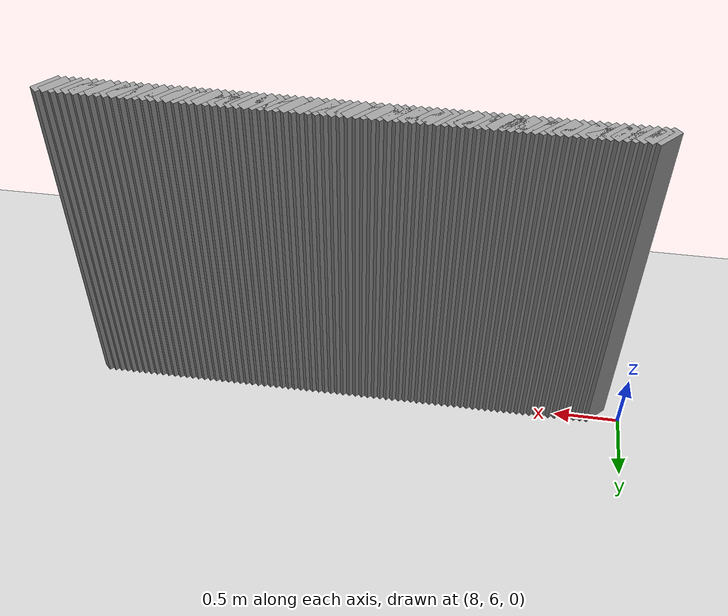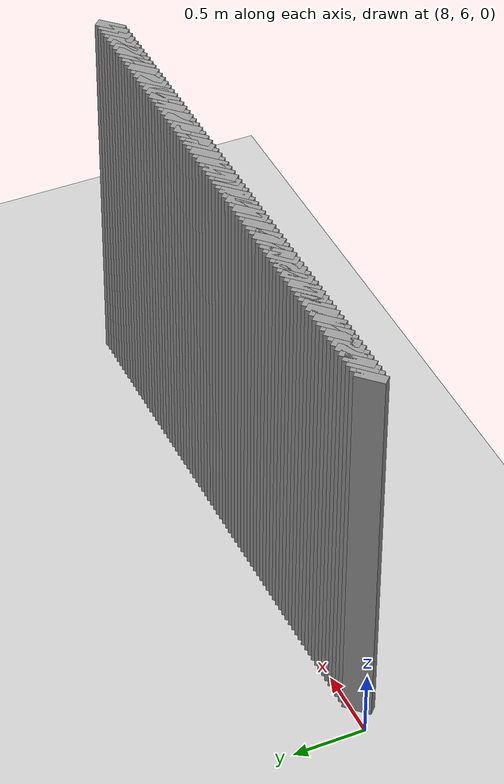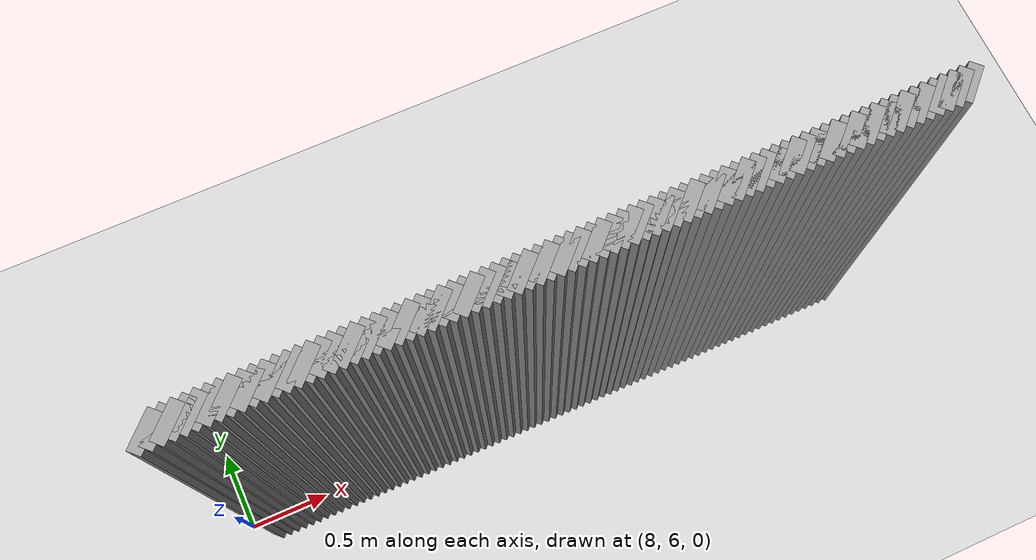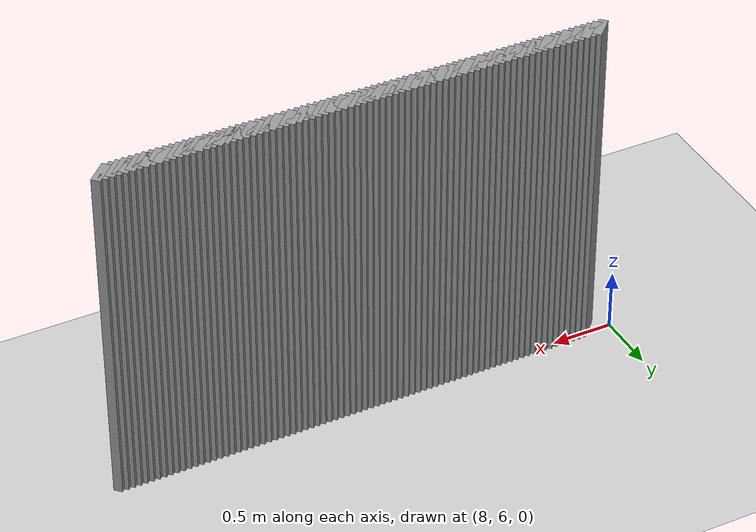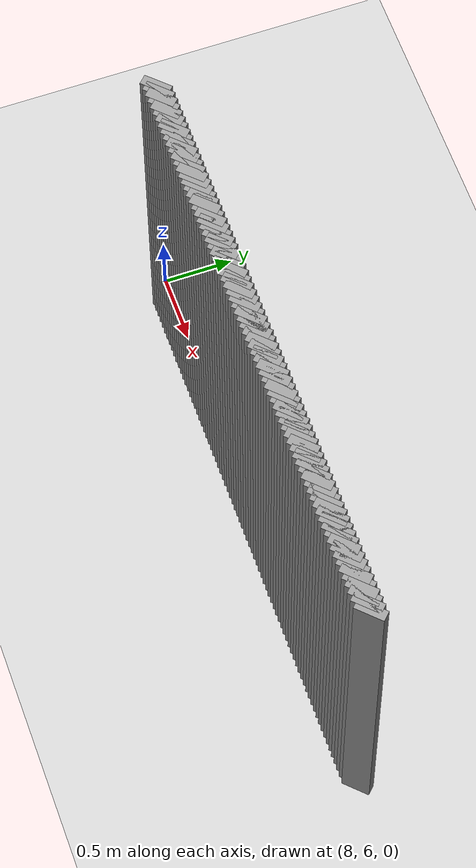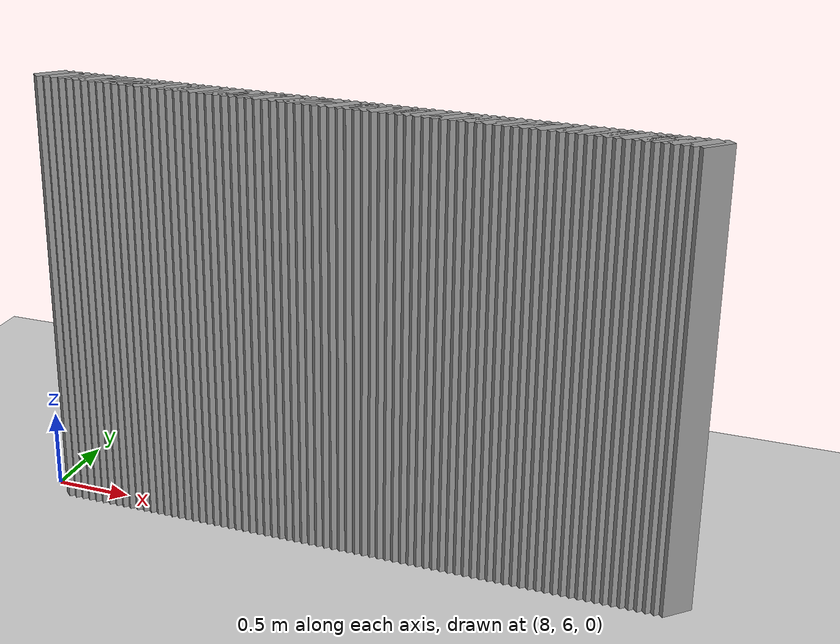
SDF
<sdf version="1.5">
 <world name="default">
  <include><uri>model://ground_plane</uri></include>
  <include><uri>model://sun</uri></include>
  <model name="grey_wall_4491">
   <static>1</static>
   <link name="link">
    <pose>8.2 5.95  1.4 0 0 -0.785398163397</pose>
    <collision name="collision"><geometry><box><size>0.0707106781187 .2  2.8</size></box></geometry></collision>
    <visual name="visual">
     <cast_shadows>0</cast_shadows>
     <geometry><box><size>0.0707106781187 .2  2.8</size></box></geometry>
     <material>
      <script>
       <uri>model://grey_wall/materials/scripts</uri>
       <uri>model://grey_wall/materials/textures</uri>
       <name>vrc/grey_wall</name>
      </script>
     </material>
    </visual>
   </link>
  </model>
  <model name="grey_wall_4492">
   <static>1</static>
   <link name="link">
    <pose>8.25 5.95  1.4 0 0 -0.785398163397</pose>
    <collision name="collision"><geometry><box><size>0.0707106781187 .2  2.8</size></box></geometry></collision>
    <visual name="visual">
     <cast_shadows>0</cast_shadows>
     <geometry><box><size>0.0707106781187 .2  2.8</size></box></geometry>
     <material>
      <script>
       <uri>model://grey_wall/materials/scripts</uri>
       <uri>model://grey_wall/materials/textures</uri>
       <name>vrc/grey_wall</name>
      </script>
     </material>
    </visual>
   </link>
  </model>
  <model name="grey_wall_4493">
   <static>1</static>
   <link name="link">
    <pose>8.3 5.95  1.4 0 0 -0.785398163397</pose>
    <collision name="collision"><geometry><box><size>0.0707106781187 .2  2.8</size></box></geometry></collision>
    <visual name="visual">
     <cast_shadows>0</cast_shadows>
     <geometry><box><size>0.0707106781187 .2  2.8</size></box></geometry>
     <material>
      <script>
       <uri>model://grey_wall/materials/scripts</uri>
       <uri>model://grey_wall/materials/textures</uri>
       <name>vrc/grey_wall</name>
      </script>
     </material>
    </visual>
   </link>
  </model>
  <model name="grey_wall_4494">
   <static>1</static>
   <link name="link">
    <pose>8.35 5.95  1.4 0 0 -0.785398163397</pose>
    <collision name="collision"><geometry><box><size>0.0707106781187 .2  2.8</size></box></geometry></collision>
    <visual name="visual">
     <cast_shadows>0</cast_shadows>
     <geometry><box><size>0.0707106781187 .2  2.8</size></box></geometry>
     <material>
      <script>
       <uri>model://grey_wall/materials/scripts</uri>
       <uri>model://grey_wall/materials/textures</uri>
       <name>vrc/grey_wall</name>
      </script>
     </material>
    </visual>
   </link>
  </model>
  <model name="grey_wall_4495">
   <static>1</static>
   <link name="link">
    <pose>8.4 5.95  1.4 0 0 -0.785398163397</pose>
    <collision name="collision"><geometry><box><size>0.0707106781187 .2  2.8</size></box></geometry></collision>
    <visual name="visual">
     <cast_shadows>0</cast_shadows>
     <geometry><box><size>0.0707106781187 .2  2.8</size></box></geometry>
     <material>
      <script>
       <uri>model://grey_wall/materials/scripts</uri>
       <uri>model://grey_wall/materials/textures</uri>
       <name>vrc/grey_wall</name>
      </script>
     </material>
    </visual>
   </link>
  </model>
  <model name="grey_wall_4496">
   <static>1</static>
   <link name="link">
    <pose>8.45 5.95  1.4 0 0 -0.785398163397</pose>
    <collision name="collision"><geometry><box><size>0.0707106781187 .2  2.8</size></box></geometry></collision>
    <visual name="visual">
     <cast_shadows>0</cast_shadows>
     <geometry><box><size>0.0707106781187 .2  2.8</size></box></geometry>
     <material>
      <script>
       <uri>model://grey_wall/materials/scripts</uri>
       <uri>model://grey_wall/materials/textures</uri>
       <name>vrc/grey_wall</name>
      </script>
     </material>
    </visual>
   </link>
  </model>
  <model name="grey_wall_4497">
   <static>1</static>
   <link name="link">
    <pose>8.5 5.95  1.4 0 0 -0.785398163397</pose>
    <collision name="collision"><geometry><box><size>0.0707106781187 .2  2.8</size></box></geometry></collision>
    <visual name="visual">
     <cast_shadows>0</cast_shadows>
     <geometry><box><size>0.0707106781187 .2  2.8</size></box></geometry>
     <material>
      <script>
       <uri>model://grey_wall/materials/scripts</uri>
       <uri>model://grey_wall/materials/textures</uri>
       <name>vrc/grey_wall</name>
      </script>
     </material>
    </visual>
   </link>
  </model>
  <model name="grey_wall_4498">
   <static>1</static>
   <link name="link">
    <pose>8.55 5.95  1.4 0 0 -0.785398163397</pose>
    <collision name="collision"><geometry><box><size>0.0707106781187 .2  2.8</size></box></geometry></collision>
    <visual name="visual">
     <cast_shadows>0</cast_shadows>
     <geometry><box><size>0.0707106781187 .2  2.8</size></box></geometry>
     <material>
      <script>
       <uri>model://grey_wall/materials/scripts</uri>
       <uri>model://grey_wall/materials/textures</uri>
       <name>vrc/grey_wall</name>
      </script>
     </material>
    </visual>
   </link>
  </model>
  <model name="grey_wall_4499">
   <static>1</static>
   <link name="link">
    <pose>8.6 5.95  1.4 0 0 -0.785398163397</pose>
    <collision name="collision"><geometry><box><size>0.0707106781187 .2  2.8</size></box></geometry></collision>
    <visual name="visual">
     <cast_shadows>0</cast_shadows>
     <geometry><box><size>0.0707106781187 .2  2.8</size></box></geometry>
     <material>
      <script>
       <uri>model://grey_wall/materials/scripts</uri>
       <uri>model://grey_wall/materials/textures</uri>
       <name>vrc/grey_wall</name>
      </script>
     </material>
    </visual>
   </link>
  </model>
  <model name="grey_wall_4500">
   <static>1</static>
   <link name="link">
    <pose>8.65 5.95  1.4 0 0 -0.785398163397</pose>
    <collision name="collision"><geometry><box><size>0.0707106781187 .2  2.8</size></box></geometry></collision>
    <visual name="visual">
     <cast_shadows>0</cast_shadows>
     <geometry><box><size>0.0707106781187 .2  2.8</size></box></geometry>
     <material>
      <script>
       <uri>model://grey_wall/materials/scripts</uri>
       <uri>model://grey_wall/materials/textures</uri>
       <name>vrc/grey_wall</name>
      </script>
     </material>
    </visual>
   </link>
  </model>
  <model name="grey_wall_4501">
   <static>1</static>
   <link name="link">
    <pose>8.7 5.95  1.4 0 0 -0.785398163397</pose>
    <collision name="collision"><geometry><box><size>0.0707106781187 .2  2.8</size></box></geometry></collision>
    <visual name="visual">
     <cast_shadows>0</cast_shadows>
     <geometry><box><size>0.0707106781187 .2  2.8</size></box></geometry>
     <material>
      <script>
       <uri>model://grey_wall/materials/scripts</uri>
       <uri>model://grey_wall/materials/textures</uri>
       <name>vrc/grey_wall</name>
      </script>
     </material>
    </visual>
   </link>
  </model>
  <model name="grey_wall_4502">
   <static>1</static>
   <link name="link">
    <pose>8.75 5.95  1.4 0 0 -0.785398163397</pose>
    <collision name="collision"><geometry><box><size>0.0707106781187 .2  2.8</size></box></geometry></collision>
    <visual name="visual">
     <cast_shadows>0</cast_shadows>
     <geometry><box><size>0.0707106781187 .2  2.8</size></box></geometry>
     <material>
      <script>
       <uri>model://grey_wall/materials/scripts</uri>
       <uri>model://grey_wall/materials/textures</uri>
       <name>vrc/grey_wall</name>
      </script>
     </material>
    </visual>
   </link>
  </model>
  <model name="grey_wall_4503">
   <static>1</static>
   <link name="link">
    <pose>8.8 5.95  1.4 0 0 -0.785398163397</pose>
    <collision name="collision"><geometry><box><size>0.0707106781187 .2  2.8</size></box></geometry></collision>
    <visual name="visual">
     <cast_shadows>0</cast_shadows>
     <geometry><box><size>0.0707106781187 .2  2.8</size></box></geometry>
     <material>
      <script>
       <uri>model://grey_wall/materials/scripts</uri>
       <uri>model://grey_wall/materials/textures</uri>
       <name>vrc/grey_wall</name>
      </script>
     </material>
    </visual>
   </link>
  </model>
  <model name="grey_wall_4504">
   <static>1</static>
   <link name="link">
    <pose>8.85 5.95  1.4 0 0 -0.785398163397</pose>
    <collision name="collision"><geometry><box><size>0.0707106781187 .2  2.8</size></box></geometry></collision>
    <visual name="visual">
     <cast_shadows>0</cast_shadows>
     <geometry><box><size>0.0707106781187 .2  2.8</size></box></geometry>
     <material>
      <script>
       <uri>model://grey_wall/materials/scripts</uri>
       <uri>model://grey_wall/materials/textures</uri>
       <name>vrc/grey_wall</name>
      </script>
     </material>
    </visual>
   </link>
  </model>
  <model name="grey_wall_4505">
   <static>1</static>
   <link name="link">
    <pose>8.9 5.95  1.4 0 0 -0.785398163397</pose>
    <collision name="collision"><geometry><box><size>0.0707106781187 .2  2.8</size></box></geometry></collision>
    <visual name="visual">
     <cast_shadows>0</cast_shadows>
     <geometry><box><size>0.0707106781187 .2  2.8</size></box></geometry>
     <material>
      <script>
       <uri>model://grey_wall/materials/scripts</uri>
       <uri>model://grey_wall/materials/textures</uri>
       <name>vrc/grey_wall</name>
      </script>
     </material>
    </visual>
   </link>
  </model>
  <model name="grey_wall_4506">
   <static>1</static>
   <link name="link">
    <pose>8.95 5.95  1.4 0 0 -0.785398163397</pose>
    <collision name="collision"><geometry><box><size>0.0707106781187 .2  2.8</size></box></geometry></collision>
    <visual name="visual">
     <cast_shadows>0</cast_shadows>
     <geometry><box><size>0.0707106781187 .2  2.8</size></box></geometry>
     <material>
      <script>
       <uri>model://grey_wall/materials/scripts</uri>
       <uri>model://grey_wall/materials/textures</uri>
       <name>vrc/grey_wall</name>
      </script>
     </material>
    </visual>
   </link>
  </model>
  <model name="grey_wall_4507">
   <static>1</static>
   <link name="link">
    <pose>9.0 5.95  1.4 0 0 -0.785398163397</pose>
    <collision name="collision"><geometry><box><size>0.0707106781187 .2  2.8</size></box></geometry></collision>
    <visual name="visual">
     <cast_shadows>0</cast_shadows>
     <geometry><box><size>0.0707106781187 .2  2.8</size></box></geometry>
     <material>
      <script>
       <uri>model://grey_wall/materials/scripts</uri>
       <uri>model://grey_wall/materials/textures</uri>
       <name>vrc/grey_wall</name>
      </script>
     </material>
    </visual>
   </link>
  </model>
  <model name="grey_wall_4508">
   <static>1</static>
   <link name="link">
    <pose>9.05 5.95  1.4 0 0 -0.785398163397</pose>
    <collision name="collision"><geometry><box><size>0.0707106781187 .2  2.8</size></box></geometry></collision>
    <visual name="visual">
     <cast_shadows>0</cast_shadows>
     <geometry><box><size>0.0707106781187 .2  2.8</size></box></geometry>
     <material>
      <script>
       <uri>model://grey_wall/materials/scripts</uri>
       <uri>model://grey_wall/materials/textures</uri>
       <name>vrc/grey_wall</name>
      </script>
     </material>
    </visual>
   </link>
  </model>
  <model name="grey_wall_4509">
   <static>1</static>
   <link name="link">
    <pose>9.1 5.95  1.4 0 0 -0.785398163397</pose>
    <collision name="collision"><geometry><box><size>0.0707106781187 .2  2.8</size></box></geometry></collision>
    <visual name="visual">
     <cast_shadows>0</cast_shadows>
     <geometry><box><size>0.0707106781187 .2  2.8</size></box></geometry>
     <material>
      <script>
       <uri>model://grey_wall/materials/scripts</uri>
       <uri>model://grey_wall/materials/textures</uri>
       <name>vrc/grey_wall</name>
      </script>
     </material>
    </visual>
   </link>
  </model>
  <model name="grey_wall_4510">
   <static>1</static>
   <link name="link">
    <pose>9.15 5.95  1.4 0 0 -0.785398163397</pose>
    <collision name="collision"><geometry><box><size>0.0707106781187 .2  2.8</size></box></geometry></collision>
    <visual name="visual">
     <cast_shadows>0</cast_shadows>
     <geometry><box><size>0.0707106781187 .2  2.8</size></box></geometry>
     <material>
      <script>
       <uri>model://grey_wall/materials/scripts</uri>
       <uri>model://grey_wall/materials/textures</uri>
       <name>vrc/grey_wall</name>
      </script>
     </material>
    </visual>
   </link>
  </model>
  <model name="grey_wall_4511">
   <static>1</static>
   <link name="link">
    <pose>9.2 5.95  1.4 0 0 -0.785398163397</pose>
    <collision name="collision"><geometry><box><size>0.0707106781187 .2  2.8</size></box></geometry></collision>
    <visual name="visual">
     <cast_shadows>0</cast_shadows>
     <geometry><box><size>0.0707106781187 .2  2.8</size></box></geometry>
     <material>
      <script>
       <uri>model://grey_wall/materials/scripts</uri>
       <uri>model://grey_wall/materials/textures</uri>
       <name>vrc/grey_wall</name>
      </script>
     </material>
    </visual>
   </link>
  </model>
  <model name="grey_wall_4512">
   <static>1</static>
   <link name="link">
    <pose>9.25 5.95  1.4 0 0 -0.785398163397</pose>
    <collision name="collision"><geometry><box><size>0.0707106781187 .2  2.8</size></box></geometry></collision>
    <visual name="visual">
     <cast_shadows>0</cast_shadows>
     <geometry><box><size>0.0707106781187 .2  2.8</size></box></geometry>
     <material>
      <script>
       <uri>model://grey_wall/materials/scripts</uri>
       <uri>model://grey_wall/materials/textures</uri>
       <name>vrc/grey_wall</name>
      </script>
     </material>
    </visual>
   </link>
  </model>
  <model name="grey_wall_4513">
   <static>1</static>
   <link name="link">
    <pose>9.3 5.95  1.4 0 0 -0.785398163397</pose>
    <collision name="collision"><geometry><box><size>0.0707106781187 .2  2.8</size></box></geometry></collision>
    <visual name="visual">
     <cast_shadows>0</cast_shadows>
     <geometry><box><size>0.0707106781187 .2  2.8</size></box></geometry>
     <material>
      <script>
       <uri>model://grey_wall/materials/scripts</uri>
       <uri>model://grey_wall/materials/textures</uri>
       <name>vrc/grey_wall</name>
      </script>
     </material>
    </visual>
   </link>
  </model>
  <model name="grey_wall_4514">
   <static>1</static>
   <link name="link">
    <pose>9.35 5.95  1.4 0 0 -0.785398163397</pose>
    <collision name="collision"><geometry><box><size>0.0707106781187 .2  2.8</size></box></geometry></collision>
    <visual name="visual">
     <cast_shadows>0</cast_shadows>
     <geometry><box><size>0.0707106781187 .2  2.8</size></box></geometry>
     <material>
      <script>
       <uri>model://grey_wall/materials/scripts</uri>
       <uri>model://grey_wall/materials/textures</uri>
       <name>vrc/grey_wall</name>
      </script>
     </material>
    </visual>
   </link>
  </model>
  <model name="grey_wall_4515">
   <static>1</static>
   <link name="link">
    <pose>9.4 5.95  1.4 0 0 -0.785398163397</pose>
    <collision name="collision"><geometry><box><size>0.0707106781187 .2  2.8</size></box></geometry></collision>
    <visual name="visual">
     <cast_shadows>0</cast_shadows>
     <geometry><box><size>0.0707106781187 .2  2.8</size></box></geometry>
     <material>
      <script>
       <uri>model://grey_wall/materials/scripts</uri>
       <uri>model://grey_wall/materials/textures</uri>
       <name>vrc/grey_wall</name>
      </script>
     </material>
    </visual>
   </link>
  </model>
  <model name="grey_wall_4516">
   <static>1</static>
   <link name="link">
    <pose>9.45 5.95  1.4 0 0 -0.785398163397</pose>
    <collision name="collision"><geometry><box><size>0.0707106781187 .2  2.8</size></box></geometry></collision>
    <visual name="visual">
     <cast_shadows>0</cast_shadows>
     <geometry><box><size>0.0707106781187 .2  2.8</size></box></geometry>
     <material>
      <script>
       <uri>model://grey_wall/materials/scripts</uri>
       <uri>model://grey_wall/materials/textures</uri>
       <name>vrc/grey_wall</name>
      </script>
     </material>
    </visual>
   </link>
  </model>
  <model name="grey_wall_4517">
   <static>1</static>
   <link name="link">
    <pose>9.5 5.95  1.4 0 0 -0.785398163397</pose>
    <collision name="collision"><geometry><box><size>0.0707106781187 .2  2.8</size></box></geometry></collision>
    <visual name="visual">
     <cast_shadows>0</cast_shadows>
     <geometry><box><size>0.0707106781187 .2  2.8</size></box></geometry>
     <material>
      <script>
       <uri>model://grey_wall/materials/scripts</uri>
       <uri>model://grey_wall/materials/textures</uri>
       <name>vrc/grey_wall</name>
      </script>
     </material>
    </visual>
   </link>
  </model>
  <model name="grey_wall_4518">
   <static>1</static>
   <link name="link">
    <pose>9.55 5.95  1.4 0 0 -0.785398163397</pose>
    <collision name="collision"><geometry><box><size>0.0707106781187 .2  2.8</size></box></geometry></collision>
    <visual name="visual">
     <cast_shadows>0</cast_shadows>
     <geometry><box><size>0.0707106781187 .2  2.8</size></box></geometry>
     <material>
      <script>
       <uri>model://grey_wall/materials/scripts</uri>
       <uri>model://grey_wall/materials/textures</uri>
       <name>vrc/grey_wall</name>
      </script>
     </material>
    </visual>
   </link>
  </model>
  <model name="grey_wall_4519">
   <static>1</static>
   <link name="link">
    <pose>9.6 5.95  1.4 0 0 -0.785398163397</pose>
    <collision name="collision"><geometry><box><size>0.0707106781187 .2  2.8</size></box></geometry></collision>
    <visual name="visual">
     <cast_shadows>0</cast_shadows>
     <geometry><box><size>0.0707106781187 .2  2.8</size></box></geometry>
     <material>
      <script>
       <uri>model://grey_wall/materials/scripts</uri>
       <uri>model://grey_wall/materials/textures</uri>
       <name>vrc/grey_wall</name>
      </script>
     </material>
    </visual>
   </link>
  </model>
  <model name="grey_wall_4520">
   <static>1</static>
   <link name="link">
    <pose>9.65 5.95  1.4 0 0 -0.785398163397</pose>
    <collision name="collision"><geometry><box><size>0.0707106781187 .2  2.8</size></box></geometry></collision>
    <visual name="visual">
     <cast_shadows>0</cast_shadows>
     <geometry><box><size>0.0707106781187 .2  2.8</size></box></geometry>
     <material>
      <script>
       <uri>model://grey_wall/materials/scripts</uri>
       <uri>model://grey_wall/materials/textures</uri>
       <name>vrc/grey_wall</name>
      </script>
     </material>
    </visual>
   </link>
  </model>
  <model name="grey_wall_4521">
   <static>1</static>
   <link name="link">
    <pose>9.7 5.95  1.4 0 0 -0.785398163397</pose>
    <collision name="collision"><geometry><box><size>0.0707106781187 .2  2.8</size></box></geometry></collision>
    <visual name="visual">
     <cast_shadows>0</cast_shadows>
     <geometry><box><size>0.0707106781187 .2  2.8</size></box></geometry>
     <material>
      <script>
       <uri>model://grey_wall/materials/scripts</uri>
       <uri>model://grey_wall/materials/textures</uri>
       <name>vrc/grey_wall</name>
      </script>
     </material>
    </visual>
   </link>
  </model>
  <model name="grey_wall_4522">
   <static>1</static>
   <link name="link">
    <pose>9.75 5.95  1.4 0 0 -0.785398163397</pose>
    <collision name="collision"><geometry><box><size>0.0707106781187 .2  2.8</size></box></geometry></collision>
    <visual name="visual">
     <cast_shadows>0</cast_shadows>
     <geometry><box><size>0.0707106781187 .2  2.8</size></box></geometry>
     <material>
      <script>
       <uri>model://grey_wall/materials/scripts</uri>
       <uri>model://grey_wall/materials/textures</uri>
       <name>vrc/grey_wall</name>
      </script>
     </material>
    </visual>
   </link>
  </model>
  <model name="grey_wall_4523">
   <static>1</static>
   <link name="link">
    <pose>9.8 5.95  1.4 0 0 -0.785398163397</pose>
    <collision name="collision"><geometry><box><size>0.0707106781187 .2  2.8</size></box></geometry></collision>
    <visual name="visual">
     <cast_shadows>0</cast_shadows>
     <geometry><box><size>0.0707106781187 .2  2.8</size></box></geometry>
     <material>
      <script>
       <uri>model://grey_wall/materials/scripts</uri>
       <uri>model://grey_wall/materials/textures</uri>
       <name>vrc/grey_wall</name>
      </script>
     </material>
    </visual>
   </link>
  </model>
  <model name="grey_wall_4524">
   <static>1</static>
   <link name="link">
    <pose>9.85 5.95  1.4 0 0 -0.785398163397</pose>
    <collision name="collision"><geometry><box><size>0.0707106781187 .2  2.8</size></box></geometry></collision>
    <visual name="visual">
     <cast_shadows>0</cast_shadows>
     <geometry><box><size>0.0707106781187 .2  2.8</size></box></geometry>
     <material>
      <script>
       <uri>model://grey_wall/materials/scripts</uri>
       <uri>model://grey_wall/materials/textures</uri>
       <name>vrc/grey_wall</name>
      </script>
     </material>
    </visual>
   </link>
  </model>
  <model name="grey_wall_4525">
   <static>1</static>
   <link name="link">
    <pose>9.9 5.95  1.4 0 0 -0.785398163397</pose>
    <collision name="collision"><geometry><box><size>0.0707106781187 .2  2.8</size></box></geometry></collision>
    <visual name="visual">
     <cast_shadows>0</cast_shadows>
     <geometry><box><size>0.0707106781187 .2  2.8</size></box></geometry>
     <material>
      <script>
       <uri>model://grey_wall/materials/scripts</uri>
       <uri>model://grey_wall/materials/textures</uri>
       <name>vrc/grey_wall</name>
      </script>
     </material>
    </visual>
   </link>
  </model>
  <model name="grey_wall_4526">
   <static>1</static>
   <link name="link">
    <pose>9.95 5.95  1.4 0 0 -0.785398163397</pose>
    <collision name="collision"><geometry><box><size>0.0707106781187 .2  2.8</size></box></geometry></collision>
    <visual name="visual">
     <cast_shadows>0</cast_shadows>
     <geometry><box><size>0.0707106781187 .2  2.8</size></box></geometry>
     <material>
      <script>
       <uri>model://grey_wall/materials/scripts</uri>
       <uri>model://grey_wall/materials/textures</uri>
       <name>vrc/grey_wall</name>
      </script>
     </material>
    </visual>
   </link>
  </model>
  <model name="grey_wall_4527">
   <static>1</static>
   <link name="link">
    <pose>10.0 5.95  1.4 0 0 -0.785398163397</pose>
    <collision name="collision"><geometry><box><size>0.0707106781187 .2  2.8</size></box></geometry></collision>
    <visual name="visual">
     <cast_shadows>0</cast_shadows>
     <geometry><box><size>0.0707106781187 .2  2.8</size></box></geometry>
     <material>
      <script>
       <uri>model://grey_wall/materials/scripts</uri>
       <uri>model://grey_wall/materials/textures</uri>
       <name>vrc/grey_wall</name>
      </script>
     </material>
    </visual>
   </link>
  </model>
  <model name="grey_wall_4528">
   <static>1</static>
   <link name="link">
    <pose>10.05 5.95  1.4 0 0 -0.785398163397</pose>
    <collision name="collision"><geometry><box><size>0.0707106781187 .2  2.8</size></box></geometry></collision>
    <visual name="visual">
     <cast_shadows>0</cast_shadows>
     <geometry><box><size>0.0707106781187 .2  2.8</size></box></geometry>
     <material>
      <script>
       <uri>model://grey_wall/materials/scripts</uri>
       <uri>model://grey_wall/materials/textures</uri>
       <name>vrc/grey_wall</name>
      </script>
     </material>
    </visual>
   </link>
  </model>
  <model name="grey_wall_4529">
   <static>1</static>
   <link name="link">
    <pose>10.1 5.95  1.4 0 0 -0.785398163397</pose>
    <collision name="collision"><geometry><box><size>0.0707106781187 .2  2.8</size></box></geometry></collision>
    <visual name="visual">
     <cast_shadows>0</cast_shadows>
     <geometry><box><size>0.0707106781187 .2  2.8</size></box></geometry>
     <material>
      <script>
       <uri>model://grey_wall/materials/scripts</uri>
       <uri>model://grey_wall/materials/textures</uri>
       <name>vrc/grey_wall</name>
      </script>
     </material>
    </visual>
   </link>
  </model>
  <model name="grey_wall_4530">
   <static>1</static>
   <link name="link">
    <pose>10.15 5.95  1.4 0 0 -0.785398163397</pose>
    <collision name="collision"><geometry><box><size>0.0707106781187 .2  2.8</size></box></geometry></collision>
    <visual name="visual">
     <cast_shadows>0</cast_shadows>
     <geometry><box><size>0.0707106781187 .2  2.8</size></box></geometry>
     <material>
      <script>
       <uri>model://grey_wall/materials/scripts</uri>
       <uri>model://grey_wall/materials/textures</uri>
       <name>vrc/grey_wall</name>
      </script>
     </material>
    </visual>
   </link>
  </model>
  <model name="grey_wall_4531">
   <static>1</static>
   <link name="link">
    <pose>10.2 5.95  1.4 0 0 -0.785398163397</pose>
    <collision name="collision"><geometry><box><size>0.0707106781187 .2  2.8</size></box></geometry></collision>
    <visual name="visual">
     <cast_shadows>0</cast_shadows>
     <geometry><box><size>0.0707106781187 .2  2.8</size></box></geometry>
     <material>
      <script>
       <uri>model://grey_wall/materials/scripts</uri>
       <uri>model://grey_wall/materials/textures</uri>
       <name>vrc/grey_wall</name>
      </script>
     </material>
    </visual>
   </link>
  </model>
  <model name="grey_wall_4532">
   <static>1</static>
   <link name="link">
    <pose>10.25 5.95  1.4 0 0 -0.785398163397</pose>
    <collision name="collision"><geometry><box><size>0.0707106781187 .2  2.8</size></box></geometry></collision>
    <visual name="visual">
     <cast_shadows>0</cast_shadows>
     <geometry><box><size>0.0707106781187 .2  2.8</size></box></geometry>
     <material>
      <script>
       <uri>model://grey_wall/materials/scripts</uri>
       <uri>model://grey_wall/materials/textures</uri>
       <name>vrc/grey_wall</name>
      </script>
     </material>
    </visual>
   </link>
  </model>
  <model name="grey_wall_4533">
   <static>1</static>
   <link name="link">
    <pose>10.3 5.95  1.4 0 0 -0.785398163397</pose>
    <collision name="collision"><geometry><box><size>0.0707106781187 .2  2.8</size></box></geometry></collision>
    <visual name="visual">
     <cast_shadows>0</cast_shadows>
     <geometry><box><size>0.0707106781187 .2  2.8</size></box></geometry>
     <material>
      <script>
       <uri>model://grey_wall/materials/scripts</uri>
       <uri>model://grey_wall/materials/textures</uri>
       <name>vrc/grey_wall</name>
      </script>
     </material>
    </visual>
   </link>
  </model>
  <model name="grey_wall_4534">
   <static>1</static>
   <link name="link">
    <pose>10.35 5.95  1.4 0 0 -0.785398163397</pose>
    <collision name="collision"><geometry><box><size>0.0707106781187 .2  2.8</size></box></geometry></collision>
    <visual name="visual">
     <cast_shadows>0</cast_shadows>
     <geometry><box><size>0.0707106781187 .2  2.8</size></box></geometry>
     <material>
      <script>
       <uri>model://grey_wall/materials/scripts</uri>
       <uri>model://grey_wall/materials/textures</uri>
       <name>vrc/grey_wall</name>
      </script>
     </material>
    </visual>
   </link>
  </model>
  <model name="grey_wall_4535">
   <static>1</static>
   <link name="link">
    <pose>10.4 5.95  1.4 0 0 -0.785398163397</pose>
    <collision name="collision"><geometry><box><size>0.0707106781187 .2  2.8</size></box></geometry></collision>
    <visual name="visual">
     <cast_shadows>0</cast_shadows>
     <geometry><box><size>0.0707106781187 .2  2.8</size></box></geometry>
     <material>
      <script>
       <uri>model://grey_wall/materials/scripts</uri>
       <uri>model://grey_wall/materials/textures</uri>
       <name>vrc/grey_wall</name>
      </script>
     </material>
    </visual>
   </link>
  </model>
  <model name="grey_wall_4536">
   <static>1</static>
   <link name="link">
    <pose>10.45 5.95  1.4 0 0 -0.785398163397</pose>
    <collision name="collision"><geometry><box><size>0.0707106781187 .2  2.8</size></box></geometry></collision>
    <visual name="visual">
     <cast_shadows>0</cast_shadows>
     <geometry><box><size>0.0707106781187 .2  2.8</size></box></geometry>
     <material>
      <script>
       <uri>model://grey_wall/materials/scripts</uri>
       <uri>model://grey_wall/materials/textures</uri>
       <name>vrc/grey_wall</name>
      </script>
     </material>
    </visual>
   </link>
  </model>
  <model name="grey_wall_4537">
   <static>1</static>
   <link name="link">
    <pose>10.5 5.95  1.4 0 0 -0.785398163397</pose>
    <collision name="collision"><geometry><box><size>0.0707106781187 .2  2.8</size></box></geometry></collision>
    <visual name="visual">
     <cast_shadows>0</cast_shadows>
     <geometry><box><size>0.0707106781187 .2  2.8</size></box></geometry>
     <material>
      <script>
       <uri>model://grey_wall/materials/scripts</uri>
       <uri>model://grey_wall/materials/textures</uri>
       <name>vrc/grey_wall</name>
      </script>
     </material>
    </visual>
   </link>
  </model>
  <model name="grey_wall_4538">
   <static>1</static>
   <link name="link">
    <pose>10.55 5.95  1.4 0 0 -0.785398163397</pose>
    <collision name="collision"><geometry><box><size>0.0707106781187 .2  2.8</size></box></geometry></collision>
    <visual name="visual">
     <cast_shadows>0</cast_shadows>
     <geometry><box><size>0.0707106781187 .2  2.8</size></box></geometry>
     <material>
      <script>
       <uri>model://grey_wall/materials/scripts</uri>
       <uri>model://grey_wall/materials/textures</uri>
       <name>vrc/grey_wall</name>
      </script>
     </material>
    </visual>
   </link>
  </model>
  <model name="grey_wall_4539">
   <static>1</static>
   <link name="link">
    <pose>10.6 5.95  1.4 0 0 -0.785398163397</pose>
    <collision name="collision"><geometry><box><size>0.0707106781187 .2  2.8</size></box></geometry></collision>
    <visual name="visual">
     <cast_shadows>0</cast_shadows>
     <geometry><box><size>0.0707106781187 .2  2.8</size></box></geometry>
     <material>
      <script>
       <uri>model://grey_wall/materials/scripts</uri>
       <uri>model://grey_wall/materials/textures</uri>
       <name>vrc/grey_wall</name>
      </script>
     </material>
    </visual>
   </link>
  </model>
  <model name="grey_wall_4540">
   <static>1</static>
   <link name="link">
    <pose>10.65 5.95  1.4 0 0 -0.785398163397</pose>
    <collision name="collision"><geometry><box><size>0.0707106781187 .2  2.8</size></box></geometry></collision>
    <visual name="visual">
     <cast_shadows>0</cast_shadows>
     <geometry><box><size>0.0707106781187 .2  2.8</size></box></geometry>
     <material>
      <script>
       <uri>model://grey_wall/materials/scripts</uri>
       <uri>model://grey_wall/materials/textures</uri>
       <name>vrc/grey_wall</name>
      </script>
     </material>
    </visual>
   </link>
  </model>
  <model name="grey_wall_4541">
   <static>1</static>
   <link name="link">
    <pose>10.7 5.95  1.4 0 0 -0.785398163397</pose>
    <collision name="collision"><geometry><box><size>0.0707106781187 .2  2.8</size></box></geometry></collision>
    <visual name="visual">
     <cast_shadows>0</cast_shadows>
     <geometry><box><size>0.0707106781187 .2  2.8</size></box></geometry>
     <material>
      <script>
       <uri>model://grey_wall/materials/scripts</uri>
       <uri>model://grey_wall/materials/textures</uri>
       <name>vrc/grey_wall</name>
      </script>
     </material>
    </visual>
   </link>
  </model>
  <model name="grey_wall_4542">
   <static>1</static>
   <link name="link">
    <pose>10.75 5.95  1.4 0 0 -0.785398163397</pose>
    <collision name="collision"><geometry><box><size>0.0707106781187 .2  2.8</size></box></geometry></collision>
    <visual name="visual">
     <cast_shadows>0</cast_shadows>
     <geometry><box><size>0.0707106781187 .2  2.8</size></box></geometry>
     <material>
      <script>
       <uri>model://grey_wall/materials/scripts</uri>
       <uri>model://grey_wall/materials/textures</uri>
       <name>vrc/grey_wall</name>
      </script>
     </material>
    </visual>
   </link>
  </model>
  <model name="grey_wall_4543">
   <static>1</static>
   <link name="link">
    <pose>10.8 5.95  1.4 0 0 -0.785398163397</pose>
    <collision name="collision"><geometry><box><size>0.0707106781187 .2  2.8</size></box></geometry></collision>
    <visual name="visual">
     <cast_shadows>0</cast_shadows>
     <geometry><box><size>0.0707106781187 .2  2.8</size></box></geometry>
     <material>
      <script>
       <uri>model://grey_wall/materials/scripts</uri>
       <uri>model://grey_wall/materials/textures</uri>
       <name>vrc/grey_wall</name>
      </script>
     </material>
    </visual>
   </link>
  </model>
  <model name="grey_wall_4544">
   <static>1</static>
   <link name="link">
    <pose>10.85 5.95  1.4 0 0 -0.785398163397</pose>
    <collision name="collision"><geometry><box><size>0.0707106781187 .2  2.8</size></box></geometry></collision>
    <visual name="visual">
     <cast_shadows>0</cast_shadows>
     <geometry><box><size>0.0707106781187 .2  2.8</size></box></geometry>
     <material>
      <script>
       <uri>model://grey_wall/materials/scripts</uri>
       <uri>model://grey_wall/materials/textures</uri>
       <name>vrc/grey_wall</name>
      </script>
     </material>
    </visual>
   </link>
  </model>
  <model name="grey_wall_4545">
   <static>1</static>
   <link name="link">
    <pose>10.9 5.95  1.4 0 0 -0.785398163397</pose>
    <collision name="collision"><geometry><box><size>0.0707106781187 .2  2.8</size></box></geometry></collision>
    <visual name="visual">
     <cast_shadows>0</cast_shadows>
     <geometry><box><size>0.0707106781187 .2  2.8</size></box></geometry>
     <material>
      <script>
       <uri>model://grey_wall/materials/scripts</uri>
       <uri>model://grey_wall/materials/textures</uri>
       <name>vrc/grey_wall</name>
      </script>
     </material>
    </visual>
   </link>
  </model>
  <model name="grey_wall_4546">
   <static>1</static>
   <link name="link">
    <pose>10.95 5.95  1.4 0 0 -0.785398163397</pose>
    <collision name="collision"><geometry><box><size>0.0707106781187 .2  2.8</size></box></geometry></collision>
    <visual name="visual">
     <cast_shadows>0</cast_shadows>
     <geometry><box><size>0.0707106781187 .2  2.8</size></box></geometry>
     <material>
      <script>
       <uri>model://grey_wall/materials/scripts</uri>
       <uri>model://grey_wall/materials/textures</uri>
       <name>vrc/grey_wall</name>
      </script>
     </material>
    </visual>
   </link>
  </model>
  <model name="grey_wall_4547">
   <static>1</static>
   <link name="link">
    <pose>11.0 5.95  1.4 0 0 -0.785398163397</pose>
    <collision name="collision"><geometry><box><size>0.0707106781187 .2  2.8</size></box></geometry></collision>
    <visual name="visual">
     <cast_shadows>0</cast_shadows>
     <geometry><box><size>0.0707106781187 .2  2.8</size></box></geometry>
     <material>
      <script>
       <uri>model://grey_wall/materials/scripts</uri>
       <uri>model://grey_wall/materials/textures</uri>
       <name>vrc/grey_wall</name>
      </script>
     </material>
    </visual>
   </link>
  </model>
  <model name="grey_wall_4548">
   <static>1</static>
   <link name="link">
    <pose>11.05 5.95  1.4 0 0 -0.785398163397</pose>
    <collision name="collision"><geometry><box><size>0.0707106781187 .2  2.8</size></box></geometry></collision>
    <visual name="visual">
     <cast_shadows>0</cast_shadows>
     <geometry><box><size>0.0707106781187 .2  2.8</size></box></geometry>
     <material>
      <script>
       <uri>model://grey_wall/materials/scripts</uri>
       <uri>model://grey_wall/materials/textures</uri>
       <name>vrc/grey_wall</name>
      </script>
     </material>
    </visual>
   </link>
  </model>
  <model name="grey_wall_4549">
   <static>1</static>
   <link name="link">
    <pose>11.1 5.95  1.4 0 0 -0.785398163397</pose>
    <collision name="collision"><geometry><box><size>0.0707106781187 .2  2.8</size></box></geometry></collision>
    <visual name="visual">
     <cast_shadows>0</cast_shadows>
     <geometry><box><size>0.0707106781187 .2  2.8</size></box></geometry>
     <material>
      <script>
       <uri>model://grey_wall/materials/scripts</uri>
       <uri>model://grey_wall/materials/textures</uri>
       <name>vrc/grey_wall</name>
      </script>
     </material>
    </visual>
   </link>
  </model>
  <model name="grey_wall_4550">
   <static>1</static>
   <link name="link">
    <pose>11.15 5.95  1.4 0 0 -0.785398163397</pose>
    <collision name="collision"><geometry><box><size>0.0707106781187 .2  2.8</size></box></geometry></collision>
    <visual name="visual">
     <cast_shadows>0</cast_shadows>
     <geometry><box><size>0.0707106781187 .2  2.8</size></box></geometry>
     <material>
      <script>
       <uri>model://grey_wall/materials/scripts</uri>
       <uri>model://grey_wall/materials/textures</uri>
       <name>vrc/grey_wall</name>
      </script>
     </material>
    </visual>
   </link>
  </model>
  <model name="grey_wall_4551">
   <static>1</static>
   <link name="link">
    <pose>11.2 5.95  1.4 0 0 -0.785398163397</pose>
    <collision name="collision"><geometry><box><size>0.0707106781187 .2  2.8</size></box></geometry></collision>
    <visual name="visual">
     <cast_shadows>0</cast_shadows>
     <geometry><box><size>0.0707106781187 .2  2.8</size></box></geometry>
     <material>
      <script>
       <uri>model://grey_wall/materials/scripts</uri>
       <uri>model://grey_wall/materials/textures</uri>
       <name>vrc/grey_wall</name>
      </script>
     </material>
    </visual>
   </link>
  </model>
  <model name="grey_wall_4552">
   <static>1</static>
   <link name="link">
    <pose>11.25 5.95  1.4 0 0 -0.785398163397</pose>
    <collision name="collision"><geometry><box><size>0.0707106781187 .2  2.8</size></box></geometry></collision>
    <visual name="visual">
     <cast_shadows>0</cast_shadows>
     <geometry><box><size>0.0707106781187 .2  2.8</size></box></geometry>
     <material>
      <script>
       <uri>model://grey_wall/materials/scripts</uri>
       <uri>model://grey_wall/materials/textures</uri>
       <name>vrc/grey_wall</name>
      </script>
     </material>
    </visual>
   </link>
  </model>
  <model name="grey_wall_4553">
   <static>1</static>
   <link name="link">
    <pose>11.3 5.95  1.4 0 0 -0.785398163397</pose>
    <collision name="collision"><geometry><box><size>0.0707106781187 .2  2.8</size></box></geometry></collision>
    <visual name="visual">
     <cast_shadows>0</cast_shadows>
     <geometry><box><size>0.0707106781187 .2  2.8</size></box></geometry>
     <material>
      <script>
       <uri>model://grey_wall/materials/scripts</uri>
       <uri>model://grey_wall/materials/textures</uri>
       <name>vrc/grey_wall</name>
      </script>
     </material>
    </visual>
   </link>
  </model>
  <model name="grey_wall_4554">
   <static>1</static>
   <link name="link">
    <pose>11.35 5.95  1.4 0 0 -0.785398163397</pose>
    <collision name="collision"><geometry><box><size>0.0707106781187 .2  2.8</size></box></geometry></collision>
    <visual name="visual">
     <cast_shadows>0</cast_shadows>
     <geometry><box><size>0.0707106781187 .2  2.8</size></box></geometry>
     <material>
      <script>
       <uri>model://grey_wall/materials/scripts</uri>
       <uri>model://grey_wall/materials/textures</uri>
       <name>vrc/grey_wall</name>
      </script>
     </material>
    </visual>
   </link>
  </model>
  <model name="grey_wall_4555">
   <static>1</static>
   <link name="link">
    <pose>11.4 5.95  1.4 0 0 -0.785398163397</pose>
    <collision name="collision"><geometry><box><size>0.0707106781187 .2  2.8</size></box></geometry></collision>
    <visual name="visual">
     <cast_shadows>0</cast_shadows>
     <geometry><box><size>0.0707106781187 .2  2.8</size></box></geometry>
     <material>
      <script>
       <uri>model://grey_wall/materials/scripts</uri>
       <uri>model://grey_wall/materials/textures</uri>
       <name>vrc/grey_wall</name>
      </script>
     </material>
    </visual>
   </link>
  </model>
  <model name="grey_wall_4556">
   <static>1</static>
   <link name="link">
    <pose>11.45 5.95  1.4 0 0 -0.785398163397</pose>
    <collision name="collision"><geometry><box><size>0.0707106781187 .2  2.8</size></box></geometry></collision>
    <visual name="visual">
     <cast_shadows>0</cast_shadows>
     <geometry><box><size>0.0707106781187 .2  2.8</size></box></geometry>
     <material>
      <script>
       <uri>model://grey_wall/materials/scripts</uri>
       <uri>model://grey_wall/materials/textures</uri>
       <name>vrc/grey_wall</name>
      </script>
     </material>
    </visual>
   </link>
  </model>
  <model name="grey_wall_4557">
   <static>1</static>
   <link name="link">
    <pose>11.5 5.95  1.4 0 0 -0.785398163397</pose>
    <collision name="collision"><geometry><box><size>0.0707106781187 .2  2.8</size></box></geometry></collision>
    <visual name="visual">
     <cast_shadows>0</cast_shadows>
     <geometry><box><size>0.0707106781187 .2  2.8</size></box></geometry>
     <material>
      <script>
       <uri>model://grey_wall/materials/scripts</uri>
       <uri>model://grey_wall/materials/textures</uri>
       <name>vrc/grey_wall</name>
      </script>
     </material>
    </visual>
   </link>
  </model>
  <model name="grey_wall_4558">
   <static>1</static>
   <link name="link">
    <pose>11.55 5.95  1.4 0 0 -0.785398163397</pose>
    <collision name="collision"><geometry><box><size>0.0707106781187 .2  2.8</size></box></geometry></collision>
    <visual name="visual">
     <cast_shadows>0</cast_shadows>
     <geometry><box><size>0.0707106781187 .2  2.8</size></box></geometry>
     <material>
      <script>
       <uri>model://grey_wall/materials/scripts</uri>
       <uri>model://grey_wall/materials/textures</uri>
       <name>vrc/grey_wall</name>
      </script>
     </material>
    </visual>
   </link>
  </model>
  <model name="grey_wall_4559">
   <static>1</static>
   <link name="link">
    <pose>11.6 5.95  1.4 0 0 -0.785398163397</pose>
    <collision name="collision"><geometry><box><size>0.0707106781187 .2  2.8</size></box></geometry></collision>
    <visual name="visual">
     <cast_shadows>0</cast_shadows>
     <geometry><box><size>0.0707106781187 .2  2.8</size></box></geometry>
     <material>
      <script>
       <uri>model://grey_wall/materials/scripts</uri>
       <uri>model://grey_wall/materials/textures</uri>
       <name>vrc/grey_wall</name>
      </script>
     </material>
    </visual>
   </link>
  </model>
  <model name="grey_wall_4560">
   <static>1</static>
   <link name="link">
    <pose>11.65 5.95  1.4 0 0 -0.785398163397</pose>
    <collision name="collision"><geometry><box><size>0.0707106781187 .2  2.8</size></box></geometry></collision>
    <visual name="visual">
     <cast_shadows>0</cast_shadows>
     <geometry><box><size>0.0707106781187 .2  2.8</size></box></geometry>
     <material>
      <script>
       <uri>model://grey_wall/materials/scripts</uri>
       <uri>model://grey_wall/materials/textures</uri>
       <name>vrc/grey_wall</name>
      </script>
     </material>
    </visual>
   </link>
  </model>
  <model name="grey_wall_4561">
   <static>1</static>
   <link name="link">
    <pose>11.7 5.95  1.4 0 0 -0.785398163397</pose>
    <collision name="collision"><geometry><box><size>0.0707106781187 .2  2.8</size></box></geometry></collision>
    <visual name="visual">
     <cast_shadows>0</cast_shadows>
     <geometry><box><size>0.0707106781187 .2  2.8</size></box></geometry>
     <material>
      <script>
       <uri>model://grey_wall/materials/scripts</uri>
       <uri>model://grey_wall/materials/textures</uri>
       <name>vrc/grey_wall</name>
      </script>
     </material>
    </visual>
   </link>
  </model>
  <model name="grey_wall_4562">
   <static>1</static>
   <link name="link">
    <pose>11.75 5.95  1.4 0 0 -0.785398163397</pose>
    <collision name="collision"><geometry><box><size>0.0707106781187 .2  2.8</size></box></geometry></collision>
    <visual name="visual">
     <cast_shadows>0</cast_shadows>
     <geometry><box><size>0.0707106781187 .2  2.8</size></box></geometry>
     <material>
      <script>
       <uri>model://grey_wall/materials/scripts</uri>
       <uri>model://grey_wall/materials/textures</uri>
       <name>vrc/grey_wall</name>
      </script>
     </material>
    </visual>
   </link>
  </model>
  <model name="grey_wall_4563">
   <static>1</static>
   <link name="link">
    <pose>11.8 5.95  1.4 0 0 -0.785398163397</pose>
    <collision name="collision"><geometry><box><size>0.0707106781187 .2  2.8</size></box></geometry></collision>
    <visual name="visual">
     <cast_shadows>0</cast_shadows>
     <geometry><box><size>0.0707106781187 .2  2.8</size></box></geometry>
     <material>
      <script>
       <uri>model://grey_wall/materials/scripts</uri>
       <uri>model://grey_wall/materials/textures</uri>
       <name>vrc/grey_wall</name>
      </script>
     </material>
    </visual>
   </link>
  </model>
  <model name="grey_wall_4564">
   <static>1</static>
   <link name="link">
    <pose>11.85 5.95  1.4 0 0 -0.785398163397</pose>
    <collision name="collision"><geometry><box><size>0.0707106781187 .2  2.8</size></box></geometry></collision>
    <visual name="visual">
     <cast_shadows>0</cast_shadows>
     <geometry><box><size>0.0707106781187 .2  2.8</size></box></geometry>
     <material>
      <script>
       <uri>model://grey_wall/materials/scripts</uri>
       <uri>model://grey_wall/materials/textures</uri>
       <name>vrc/grey_wall</name>
      </script>
     </material>
    </visual>
   </link>
  </model>
  <model name="grey_wall_4565">
   <static>1</static>
   <link name="link">
    <pose>11.9 5.95  1.4 0 0 -0.785398163397</pose>
    <collision name="collision"><geometry><box><size>0.0707106781187 .2  2.8</size></box></geometry></collision>
    <visual name="visual">
     <cast_shadows>0</cast_shadows>
     <geometry><box><size>0.0707106781187 .2  2.8</size></box></geometry>
     <material>
      <script>
       <uri>model://grey_wall/materials/scripts</uri>
       <uri>model://grey_wall/materials/textures</uri>
       <name>vrc/grey_wall</name>
      </script>
     </material>
    </visual>
   </link>
  </model>
  <model name="grey_wall_4566">
   <static>1</static>
   <link name="link">
    <pose>11.95 5.95  1.4 0 0 -0.785398163397</pose>
    <collision name="collision"><geometry><box><size>0.0707106781187 .2  2.8</size></box></geometry></collision>
    <visual name="visual">
     <cast_shadows>0</cast_shadows>
     <geometry><box><size>0.0707106781187 .2  2.8</size></box></geometry>
     <material>
      <script>
       <uri>model://grey_wall/materials/scripts</uri>
       <uri>model://grey_wall/materials/textures</uri>
       <name>vrc/grey_wall</name>
      </script>
     </material>
    </visual>
   </link>
  </model>
  <model name="grey_wall_4567">
   <static>1</static>
   <link name="link">
    <pose>12.0 5.95  1.4 0 0 -0.785398163397</pose>
    <collision name="collision"><geometry><box><size>0.0707106781187 .2  2.8</size></box></geometry></collision>
    <visual name="visual">
     <cast_shadows>0</cast_shadows>
     <geometry><box><size>0.0707106781187 .2  2.8</size></box></geometry>
     <material>
      <script>
       <uri>model://grey_wall/materials/scripts</uri>
       <uri>model://grey_wall/materials/textures</uri>
       <name>vrc/grey_wall</name>
      </script>
     </material>
    </visual>
   </link>
  </model>
  <model name="grey_wall_4568">
   <static>1</static>
   <link name="link">
    <pose>12.05 5.95  1.4 0 0 -0.785398163397</pose>
    <collision name="collision"><geometry><box><size>0.0707106781187 .2  2.8</size></box></geometry></collision>
    <visual name="visual">
     <cast_shadows>0</cast_shadows>
     <geometry><box><size>0.0707106781187 .2  2.8</size></box></geometry>
     <material>
      <script>
       <uri>model://grey_wall/materials/scripts</uri>
       <uri>model://grey_wall/materials/textures</uri>
       <name>vrc/grey_wall</name>
      </script>
     </material>
    </visual>
   </link>
  </model>
  <model name="grey_wall_4569">
   <static>1</static>
   <link name="link">
    <pose>12.1 5.95  1.4 0 0 -0.785398163397</pose>
    <collision name="collision"><geometry><box><size>0.0707106781187 .2  2.8</size></box></geometry></collision>
    <visual name="visual">
     <cast_shadows>0</cast_shadows>
     <geometry><box><size>0.0707106781187 .2  2.8</size></box></geometry>
     <material>
      <script>
       <uri>model://grey_wall/materials/scripts</uri>
       <uri>model://grey_wall/materials/textures</uri>
       <name>vrc/grey_wall</name>
      </script>
     </material>
    </visual>
   </link>
  </model>
 </world>
</sdf>
